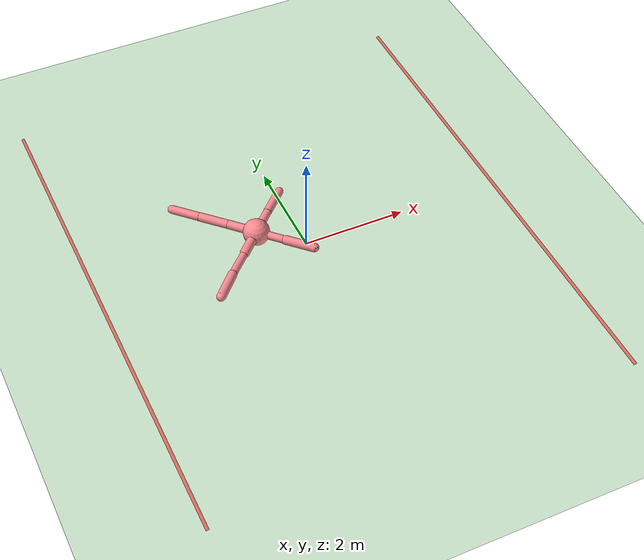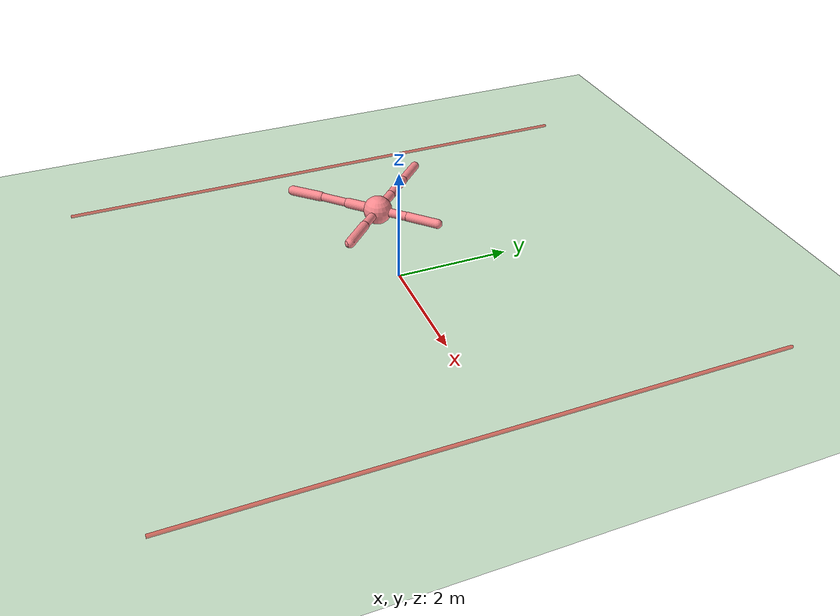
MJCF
<mujoco model="mutiagent_world">
  <compiler angle="degree" coordinate="local" inertiafromgeom="true" />

  <option integrator="RK4" timestep="0.003" solver="PGS" iterations="1000" />

  <default>
    <joint armature="1" damping="1" limited="true" />
  <default class="agent0"><joint armature="1" damping="1" limited="true" />
    <geom conaffinity="0" condim="3" density="5.0" friction="1 0.5 0.5" margin="0.01" rgba="0.98 0.54 0.56 1" material="geom" contype="1" />
  </default></default>

  <visual>
    <headlight ambient=".1 .1 .1" diffuse=".6 .6 .6" specular="0.3 0.3 0.3" />
    <map znear=".01" />
    <quality shadowsize="16384" />
  </visual>

  <asset>
    <texture builtin="gradient" height="100" rgb1=".4 .5 .6" rgb2="0 0 0" type="skybox" width="100" />
    <texture builtin="flat" height="1278" mark="cross" markrgb="0 0 0" name="texgeom" random="0.01" rgb1="0.8 0.6 0.4" rgb2="1 1 1" type="cube" width="127" />
    <texture builtin="checker" height="100" name="texplane" rgb1="0 0 0" rgb2="0.8 0.8 0.8" type="2d" width="100" />
    <material name="geom" texture="texgeom" texuniform="true" />
    <texture name="MatPlane" type="2d" builtin="checker" rgb1=".4 .4 .4" rgb2=".4 .4 .4" width="300" height="300" mark="edge" markrgb="0.1 0.1 0.1" />
    <material name="MatPlane" texture="MatPlane" texrepeat="2 2" texuniform="true" reflectance=".2" />
  </asset>

  <worldbody>
    <light cutoff="100" diffuse="1 1 1" dir="-0 0 -1.3" directional="true" exponent="1" pos="0 0 1.3" specular=".1 .1 .1" />
    <geom contype="1" conaffinity="1" friction="1 .1 .1" condim="3" material="MatPlane" name="floor" pos="0 0 0" rgba="0.8 0.9 0.8 1" size="20 20 0.125" type="plane" />
    <geom fromto="4 -5 0  4 +5 0" name="rightgoal" rgba="1 0 0 0.5" size=".03" type="cylinder" />
    <geom fromto="-4 -5 0  -4 +5 0" name="leftgoal" rgba="1 0 0 0.5" size=".03" type="cylinder" />
  <body name="agent0/0" pos="-1 0 0.75" euler="0 0 0">
    <geom pos="0 0 0" size="0.25" type="sphere" class="agent0" name="agent0/anon9747051754" />
    <joint armature="0" damping="0" limited="false" margin="0.01" name="agent0/0_joint" pos="0 0 0" range="-30 30" type="free" />
    <body name="agent0/1" pos="0 0 0">
      <geom fromto="-0.001547 -0.001551 0 0.397442 0.398246 0" size="0.077456" type="capsule" class="agent0" name="agent0/anon9312739131" />
      <joint axis="0 0 1" name="agent0/1_joint" pos="0 0 0" range="-30 30" type="hinge" />
      <body name="agent0/11" pos="0.397442 0.398246 0">
        <geom fromto="-0.000002 -0.000002 0 0.399937 0.390403 0" size="0.080875" type="capsule" class="agent0" name="agent0/anon5234552480" />
        <joint axis="-0.707107 0.707107 0" name="agent0/11_joint" pos="0 0 0" range="-60 60" type="hinge" />
      </body>
    </body>
    <body name="agent0/2" pos="0 0 0">
      <geom fromto="0.001967 -0.001976 0 -0.391967 0.393733 0" size="0.083505" type="capsule" class="agent0" name="agent0/anon1734463156" />
      <joint axis="0 0 1" name="agent0/2_joint" pos="0 0 0" range="-30 30" type="hinge" />
      <body name="agent0/12" pos="-0.391967 0.393733 0">
        <geom fromto="0.001029 -0.00101 0 -0.397982 0.390521 0" size="0.082691" type="capsule" class="agent0" name="agent0/anon278710078" />
        <joint axis="-0.707107 -0.707107 0" name="agent0/12_joint" pos="0 0 0" range="-60 60" type="hinge" />
        <body name="agent0/112" pos="-0.397982 0.390521 0">
          <geom fromto="0.000064 -0.000064 0 -0.399558 0.398953 0" size="0.078963" type="capsule" class="agent0" name="agent0/anon1090558394" />
          <joint axis="-0.707107 -0.707107 0" name="agent0/112_joint" pos="0 0 0" range="-60 60" type="hinge" />
        </body>
      </body>
    </body>
    <body name="agent0/3" pos="0 0 0">
      <geom fromto="0.002005 0.002005 0 -0.39923 -0.399198 0" size="0.08939" type="capsule" class="agent0" name="agent0/anon7285571367" />
      <joint axis="0 0 1" name="agent0/3_joint" pos="0 0 0" range="-30 30" type="hinge" />
      <body name="agent0/13" pos="-0.39923 -0.399198 0">
        <geom fromto="0.00135 0.001315 0 -0.398362 -0.387847 0" size="0.073169" type="capsule" class="agent0" name="agent0/anon7354146179" />
        <joint axis="0.707107 -0.707107 0" name="agent0/13_joint" pos="0 0 0" range="-60 60" type="hinge" />
        <body name="agent0/113" pos="-0.398362 -0.387847 0">
          <geom fromto="0.000253 0.000267 0 -0.374924 -0.396313 0" size="0.087034" type="capsule" class="agent0" name="agent0/anon636028517" />
          <joint axis="0.707107 -0.707107 0" name="agent0/113_joint" pos="0 0 0" range="-60 60" type="hinge" />
        </body>
      </body>
    </body>
    <body name="agent0/4" pos="0 0 0">
      <geom fromto="-0.00001 0.00001 0 0.399714 -0.399997 0" size="0.073856" type="capsule" class="agent0" name="agent0/anon4285262776" />
      <joint axis="0 0 1" name="agent0/4_joint" pos="0 0 0" range="-30 30" type="hinge" />
      <body name="agent0/14" pos="0.399714 -0.399997 0">
        <geom fromto="-0.000249 0.000247 0 0.399661 -0.397353 0" size="0.081519" type="capsule" class="agent0" name="agent0/anon1145815739" />
        <joint axis="0.707107 0.707107 0" name="agent0/14_joint" pos="0 0 0" range="-60 60" type="hinge" />
      </body>
      <body name="agent0/24" pos="0.399714 -0.399997 0">
        <geom fromto="-0.000764 0.000753 0 0.398609 -0.392628 0" size="0.085445" type="capsule" class="agent0" name="agent0/anon4194529282" />
        <joint axis="0 0 1" name="agent0/24_joint" pos="0 0 0" range="-30 30" type="hinge" />
      </body>
    </body>
  </body>
  </worldbody>
<actuator>
    <motor ctrllimited="true" ctrlrange="-1.0 1.0" joint="agent0/1_joint" gear="136.531975" name="agent0/1_joint" class="agent0" />
    <motor ctrllimited="true" ctrlrange="-1.0 1.0" joint="agent0/2_joint" gear="150.327671" name="agent0/2_joint" class="agent0" />
    <motor ctrllimited="true" ctrlrange="-1.0 1.0" joint="agent0/3_joint" gear="117.660937" name="agent0/3_joint" class="agent0" />
    <motor ctrllimited="true" ctrlrange="-1.0 1.0" joint="agent0/4_joint" gear="160.560086" name="agent0/4_joint" class="agent0" />
    <motor ctrllimited="true" ctrlrange="-1.0 1.0" joint="agent0/11_joint" gear="117.727597" name="agent0/11_joint" class="agent0" />
    <motor ctrllimited="true" ctrlrange="-1.0 1.0" joint="agent0/12_joint" gear="202.518387" name="agent0/12_joint" class="agent0" />
    <motor ctrllimited="true" ctrlrange="-1.0 1.0" joint="agent0/13_joint" gear="113.551376" name="agent0/13_joint" class="agent0" />
    <motor ctrllimited="true" ctrlrange="-1.0 1.0" joint="agent0/14_joint" gear="140.486754" name="agent0/14_joint" class="agent0" />
    <motor ctrllimited="true" ctrlrange="-1.0 1.0" joint="agent0/112_joint" gear="127.028536" name="agent0/112_joint" class="agent0" />
    <motor ctrllimited="true" ctrlrange="-1.0 1.0" joint="agent0/113_joint" gear="150.619407" name="agent0/113_joint" class="agent0" />
    <motor ctrllimited="true" ctrlrange="-1.0 1.0" joint="agent0/24_joint" gear="168.462531" name="agent0/24_joint" class="agent0" />
  </actuator>
  </mujoco>
